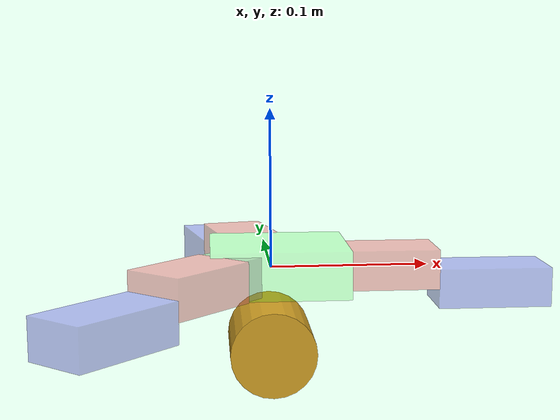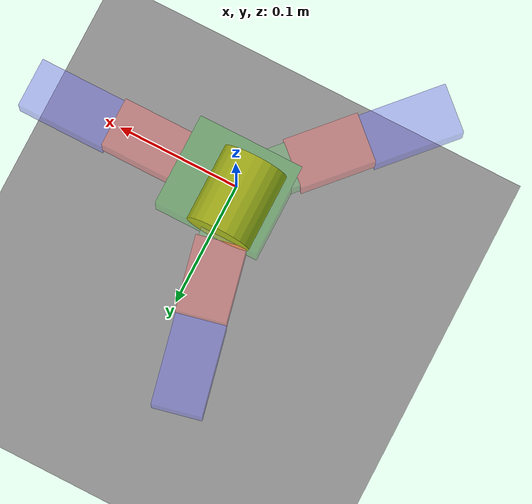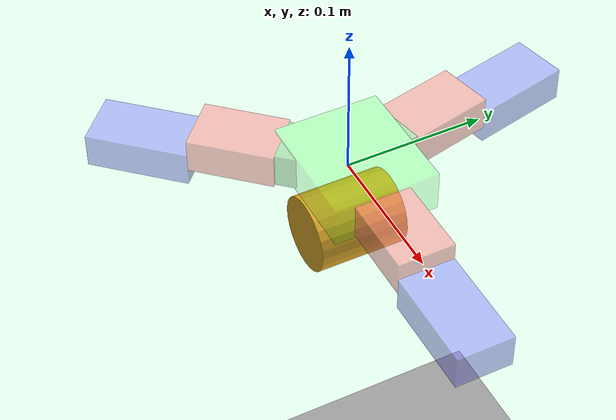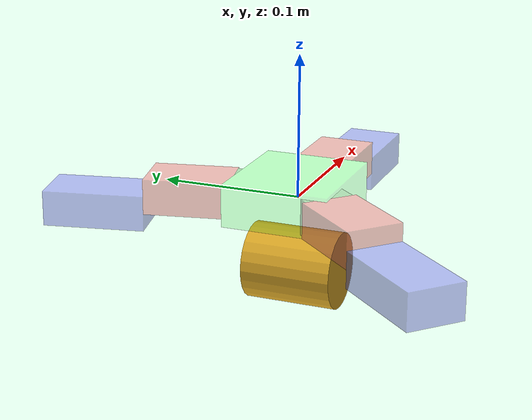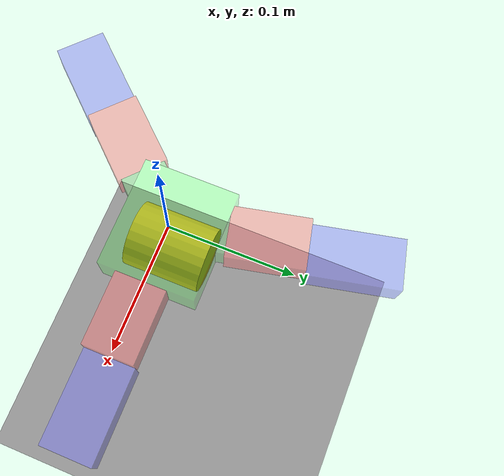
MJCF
<mujoco model="3_finger_hand">
  <compiler angle="radian"/>

  <option timestep="0.001"/>

  <default>
    <joint armature="0.01" damping="1" frictionloss="0.01"/>
    <geom condim="6" friction="0.5" margin="0.001"/>
  </default>

  <asset>
    <texture type="skybox" colorspace="auto" builtin="gradient" rgb1="0.9 0.9 0.9" rgb2="0.3 0.3 0.35" width="256" height="1536"/>
  </asset>

  <worldbody>
    <geom name="ground" size="5 5 0.1" pos="0 0 -0.5" type="plane" friction="0.5 0.1 0.1" rgba="0.6 0.6 0.6 1"/>
    <geom name="origin_marker" size="0.001" rgba="1 0 0 0.5"/>
    <geom name="fingers_bbox" size="0.0376339 0.0432036 0.015" pos="0.00486615 0.00358528 0" quat="0.707107 0 0 0.707107" type="box" contype="0" conaffinity="0" rgba="0 1 0 0.2"/>
    <light pos="0 0 10" dir="0 0 -1"/>
    <body name="ID1_ROT" pos="-0.00649319 0.0292889 0" quat="0.442595 -0.551462 0.442595 0.551462">
      <geom name="ID1_ROT_geom" size="0.0125 0.0175 0.015" type="box" rgba="0.5 0.8 0.5 0.5"/>
      <body name="ID1_PART1" pos="0 0 0.015">
        <joint name="ID1_PART1_joint" pos="0 0 0" axis="0 1 0" range="0 1.5708"/>
        <geom name="ID1_PART1_geom" size="0.0125 0.02 0.03" pos="0 0 0.03" type="box" rgba="1 0.5 0.5 0.5"/>
        <body name="ID1_PART2" pos="0 0 0.06">
          <joint name="ID1_PART2_joint" pos="0 0 0" axis="0 1 0" range="0 1.5708"/>
          <geom name="ID1_PART2_geom" size="0.0125 0.02 0.036" pos="0.0125 0 0.036" type="box" rgba="0.5 0.5 1 0.5"/>
        </body>
      </body>
    </body>
    <body name="ID2_ROT" pos="-0.0202677 -0.0221183 0" quat="0.284785 0.647223 0.284785 -0.647223">
      <geom name="ID2_ROT_geom" size="0.0125 0.0175 0.015" type="box" rgba="0.5 0.8 0.5 0.5"/>
      <body name="ID2_PART1" pos="0 0 0.015">
        <joint name="ID2_PART1_joint" pos="0 0 0" axis="0 1 0" range="0 1.5708"/>
        <geom name="ID2_PART1_geom" size="0.0125 0.02 0.03" pos="0 0 0.03" type="box" rgba="1 0.5 0.5 0.5"/>
        <body name="ID2_PART2" pos="0 0 0.06">
          <joint name="ID2_PART2_joint" pos="0 0 0" axis="0 1 0" range="0 1.5708"/>
          <geom name="ID2_PART2_geom" size="0.0125 0.02 0.036" pos="0.0125 0 0.036" type="box" rgba="0.5 0.5 1 0.5"/>
        </body>
      </body>
    </body>
    <body name="ID3_ROT" pos="0.03 0 0" quat="0.707107 0 0.707107 0">
      <geom name="ID3_ROT_geom" size="0.0125 0.0175 0.015" type="box" rgba="0.5 0.8 0.5 0.5"/>
      <body name="ID3_PART1" pos="0 0 0.015">
        <joint name="ID3_PART1_joint" pos="0 0 0" axis="0 1 0" range="0 1.5708"/>
        <geom name="ID3_PART1_geom" size="0.0125 0.02 0.03" pos="0 0 0.03" type="box" rgba="1 0.5 0.5 0.5"/>
        <body name="ID3_PART2" pos="0 0 0.06">
          <joint name="ID3_PART2_joint" pos="0 0 0" axis="0 1 0" range="0 1.5708"/>
          <geom name="ID3_PART2_geom" size="0.0125 0.02 0.036" pos="0.0125 0 0.036" type="box" rgba="0.5 0.5 1 0.5"/>
        </body>
      </body>
    </body>
    <body name="grasp_cylinder" pos="0 0 -0.05" quat="0.707107 0.707107 0 0" gravcomp="1">
      <joint type="free"/>
      <geom name="grasp_cylinder_geom" size="0.027 0.032" type="cylinder" friction="1 1 1" density="650" rgba="0.85 0.65 0.15 1"/>
    </body>
  </worldbody>

  <contact>
    <exclude name="exc_ID1_rot_p1" body1="ID1_ROT" body2="ID1_PART1"/>
    <exclude name="exc_ID1_rot_p2" body1="ID1_ROT" body2="ID1_PART2"/>
    <exclude name="exc_ID1_p1_p2" body1="ID1_PART1" body2="ID1_PART2"/>
    <exclude name="exc_ID2_rot_p1" body1="ID2_ROT" body2="ID2_PART1"/>
    <exclude name="exc_ID2_rot_p2" body1="ID2_ROT" body2="ID2_PART2"/>
    <exclude name="exc_ID2_p1_p2" body1="ID2_PART1" body2="ID2_PART2"/>
    <exclude name="exc_ID3_rot_p1" body1="ID3_ROT" body2="ID3_PART1"/>
    <exclude name="exc_ID3_rot_p2" body1="ID3_ROT" body2="ID3_PART2"/>
    <exclude name="exc_ID3_p1_p2" body1="ID3_PART1" body2="ID3_PART2"/>
  </contact>

  <actuator>
    <general name="motor_ID1_PART1" joint="ID1_PART1_joint" ctrlrange="-162 162"/>
    <general name="motor_ID1_PART2" joint="ID1_PART2_joint" ctrlrange="-162 162"/>
    <general name="motor_ID2_PART1" joint="ID2_PART1_joint" ctrlrange="-162 162"/>
    <general name="motor_ID2_PART2" joint="ID2_PART2_joint" ctrlrange="-162 162"/>
    <general name="motor_ID3_PART1" joint="ID3_PART1_joint" ctrlrange="-162 162"/>
    <general name="motor_ID3_PART2" joint="ID3_PART2_joint" ctrlrange="-162 162"/>
  </actuator>
</mujoco>
